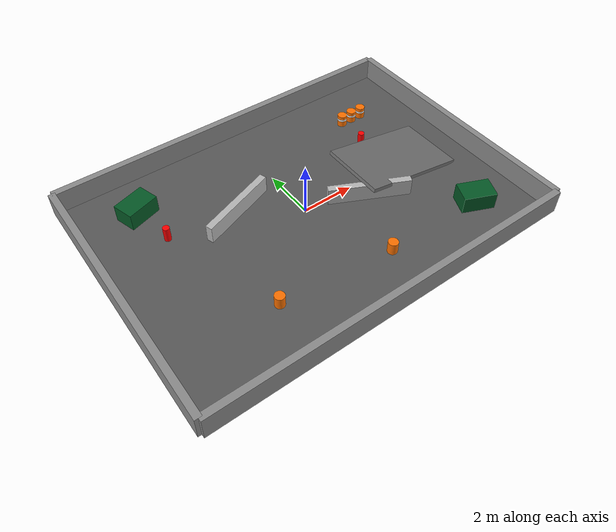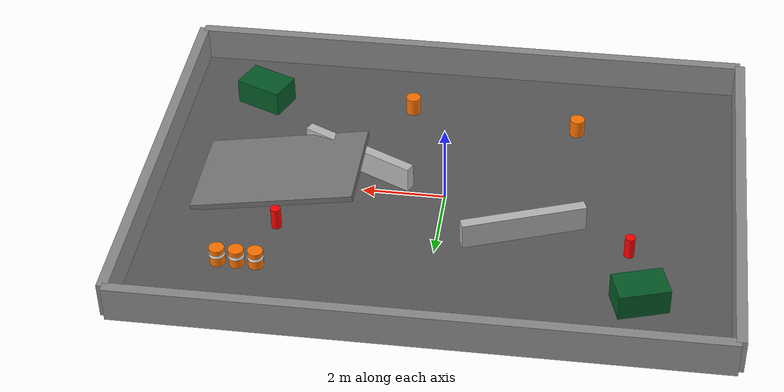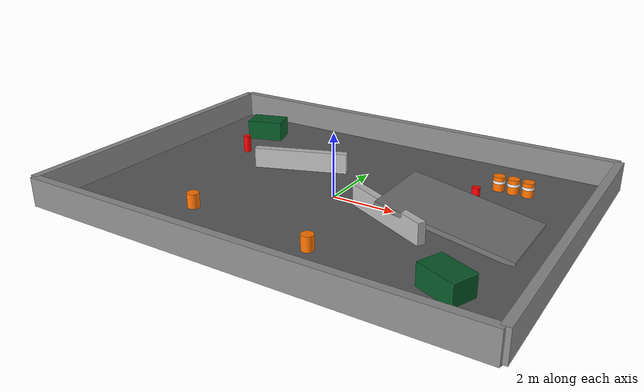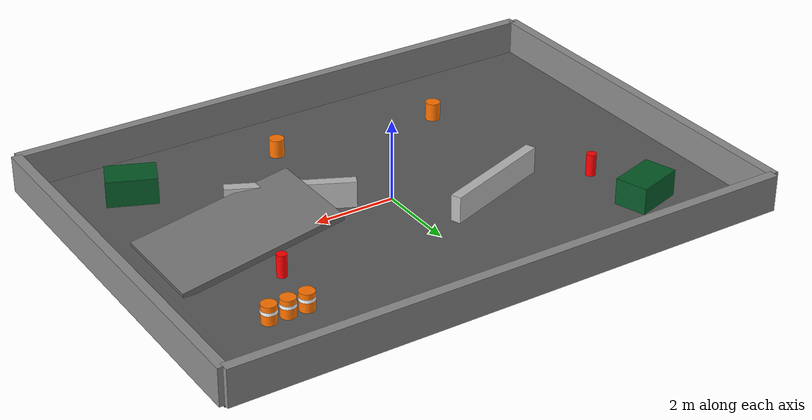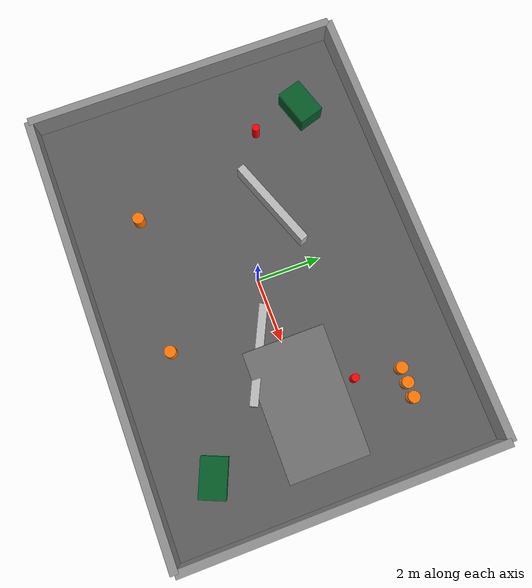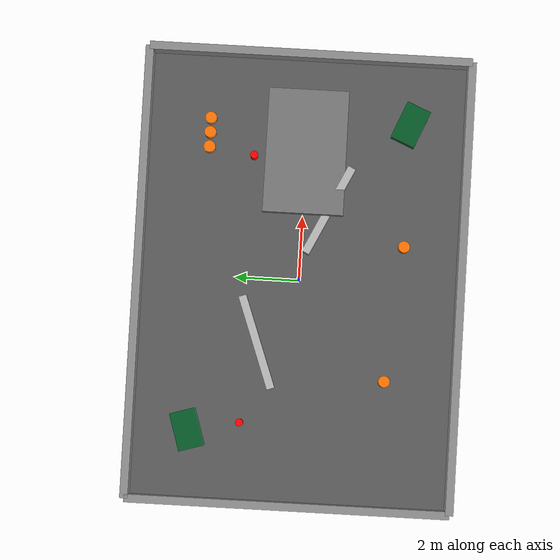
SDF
<?xml version="1.0" ?>
<sdf version="1.10">
  <world name="stability_test_world">

    <plugin filename="gz-sim-physics-system"
            name="gz::sim::systems::Physics"/>

    <plugin filename="gz-sim-scene-broadcaster-system"
            name="gz::sim::systems::SceneBroadcaster"/>

    <plugin filename="gz-sim-user-commands-system"
            name="gz::sim::systems::UserCommands"/>

    <plugin filename="gz-sim-sensors-system"
            name="gz::sim::systems::Sensors">
      <render_engine>ogre2</render_engine>
    </plugin>

    <plugin filename="gz-sim-imu-system"
            name="gz::sim::systems::Imu"/>

    <light type="directional" name="sun">
      <pose>0 0 10 0 0 0</pose>
      <diffuse>0.9 0.9 0.9 1</diffuse>
      <direction>-0.4 0.2 -1</direction>
    </light>

    <!-- chão tipo cimento -->
    <model name="concrete_ground">
      <static>true</static>
      <link name="link">
        <collision name="collision">
          <geometry><box><size>14 10 0.1</size></box></geometry>
        </collision>
        <visual name="visual">
          <geometry><box><size>14 10 0.1</size></box></geometry>
          <material>
            <ambient>0.28 0.28 0.28 1</ambient>
            <diffuse>0.35 0.35 0.35 1</diffuse>
          </material>
        </visual>
      </link>
    </model>

    <!-- paredes exteriores -->
    <model name="wall_front">
      <static>true</static>
      <pose>7 0 0.45 0 0 0</pose>
      <link name="link">
        <collision name="collision"><geometry><box><size>0.25 10 0.9</size></box></geometry></collision>
        <visual name="visual"><geometry><box><size>0.25 10 0.9</size></box></geometry>
          <material><ambient>0.45 0.45 0.45 1</ambient><diffuse>0.55 0.55 0.55 1</diffuse></material>
        </visual>
      </link>
    </model>

    <model name="wall_back">
      <static>true</static>
      <pose>-7 0 0.45 0 0 0</pose>
      <link name="link">
        <collision name="collision"><geometry><box><size>0.25 10 0.9</size></box></geometry></collision>
        <visual name="visual"><geometry><box><size>0.25 10 0.9</size></box></geometry>
          <material><ambient>0.45 0.45 0.45 1</ambient><diffuse>0.55 0.55 0.55 1</diffuse></material>
        </visual>
      </link>
    </model>

    <model name="wall_left">
      <static>true</static>
      <pose>0 5 0.45 0 0 0</pose>
      <link name="link">
        <collision name="collision"><geometry><box><size>14 0.25 0.9</size></box></geometry></collision>
        <visual name="visual"><geometry><box><size>14 0.25 0.9</size></box></geometry>
          <material><ambient>0.45 0.45 0.45 1</ambient><diffuse>0.55 0.55 0.55 1</diffuse></material>
        </visual>
      </link>
    </model>

    <model name="wall_right">
      <static>true</static>
      <pose>0 -5 0.45 0 0 0</pose>
      <link name="link">
        <collision name="collision"><geometry><box><size>14 0.25 0.9</size></box></geometry></collision>
        <visual name="visual"><geometry><box><size>14 0.25 0.9</size></box></geometry>
          <material><ambient>0.45 0.45 0.45 1</ambient><diffuse>0.55 0.55 0.55 1</diffuse></material>
        </visual>
      </link>
    </model>

    <!-- barreiras internas -->
    <model name="barrier_1">
      <static>true</static>
      <pose>-2.0 1.2 0.35 0 0 0.35</pose>
      <link name="link">
        <collision name="collision"><geometry><box><size>3.0 0.25 0.7</size></box></geometry></collision>
        <visual name="visual"><geometry><box><size>3.0 0.25 0.7</size></box></geometry></visual>
      </link>
    </model>

    <model name="barrier_2">
      <static>true</static>
      <pose>2.2 -0.8 0.35 0 0 -0.45</pose>
      <link name="link">
        <collision name="collision"><geometry><box><size>3.0 0.25 0.7</size></box></geometry></collision>
        <visual name="visual"><geometry><box><size>3.0 0.25 0.7</size></box></geometry></visual>
      </link>
    </model>

    <!-- contentores verdes -->
    <model name="dumpster_1">
      <static>true</static>
      <pose>-4.8 3.2 0.35 0 0 0.3</pose>
      <link name="link">
        <collision name="collision"><geometry><box><size>1.2 0.8 0.7</size></box></geometry></collision>
        <visual name="visual">
          <geometry><box><size>1.2 0.8 0.7</size></box></geometry>
          <material><ambient>0.02 0.25 0.12 1</ambient><diffuse>0.02 0.35 0.15 1</diffuse></material>
        </visual>
      </link>
    </model>

    <model name="dumpster_2">
      <static>true</static>
      <pose>5.0 -3.2 0.35 0 0 -0.4</pose>
      <link name="link">
        <collision name="collision"><geometry><box><size>1.2 0.8 0.7</size></box></geometry></collision>
        <visual name="visual">
          <geometry><box><size>1.2 0.8 0.7</size></box></geometry>
          <material><ambient>0.02 0.25 0.12 1</ambient><diffuse>0.02 0.35 0.15 1</diffuse></material>
        </visual>
      </link>
    </model>

    <!-- cones: cilindros laranja com faixa branca -->
    <model name="cone_group_1">
      <static>true</static>
      <pose>4 3 0 0 0 0</pose>

      <link name="cone1">
        <pose>0 0 0.25 0 0 0</pose>
        <collision name="collision"><geometry><cylinder><radius>0.18</radius><length>0.5</length></cylinder></geometry></collision>
        <visual name="orange"><geometry><cylinder><radius>0.18</radius><length>0.5</length></cylinder></geometry>
          <material><ambient>1 0.35 0 1</ambient><diffuse>1 0.45 0 1</diffuse></material>
        </visual>
        <visual name="white_band"><pose>0 0 0.08 0 0 0</pose><geometry><cylinder><radius>0.185</radius><length>0.08</length></cylinder></geometry>
          <material><ambient>1 1 1 1</ambient><diffuse>1 1 1 1</diffuse></material>
        </visual>
      </link>

      <link name="cone2">
        <pose>0.45 0 0.25 0 0 0</pose>
        <collision name="collision"><geometry><cylinder><radius>0.18</radius><length>0.5</length></cylinder></geometry></collision>
        <visual name="orange"><geometry><cylinder><radius>0.18</radius><length>0.5</length></cylinder></geometry>
          <material><ambient>1 0.35 0 1</ambient><diffuse>1 0.45 0 1</diffuse></material>
        </visual>
        <visual name="white_band"><pose>0 0 0.08 0 0 0</pose><geometry><cylinder><radius>0.185</radius><length>0.08</length></cylinder></geometry>
          <material><ambient>1 1 1 1</ambient><diffuse>1 1 1 1</diffuse></material>
        </visual>
      </link>

      <link name="cone3">
        <pose>0.9 0 0.25 0 0 0</pose>
        <collision name="collision"><geometry><cylinder><radius>0.18</radius><length>0.5</length></cylinder></geometry></collision>
        <visual name="orange"><geometry><cylinder><radius>0.18</radius><length>0.5</length></cylinder></geometry>
          <material><ambient>1 0.35 0 1</ambient><diffuse>1 0.45 0 1</diffuse></material>
        </visual>
        <visual name="white_band"><pose>0 0 0.08 0 0 0</pose><geometry><cylinder><radius>0.185</radius><length>0.08</length></cylinder></geometry>
          <material><ambient>1 1 1 1</ambient><diffuse>1 1 1 1</diffuse></material>
        </visual>
      </link>
    </model>

    <!-- cones soltos -->
    <model name="single_cone_1">
      <static>true</static>
      <pose>-3 -2.8 0.25 0 0 0</pose>
      <link name="link">
        <collision name="collision"><geometry><cylinder><radius>0.18</radius><length>0.5</length></cylinder></geometry></collision>
        <visual name="visual"><geometry><cylinder><radius>0.18</radius><length>0.5</length></cylinder></geometry>
          <material><ambient>1 0.35 0 1</ambient><diffuse>1 0.45 0 1</diffuse></material>
        </visual>
      </link>
    </model>

    <model name="single_cone_2">
      <static>true</static>
      <pose>1.2 -3.2 0.25 0 0 0</pose>
      <link name="link">
        <collision name="collision"><geometry><cylinder><radius>0.18</radius><length>0.5</length></cylinder></geometry></collision>
        <visual name="visual"><geometry><cylinder><radius>0.18</radius><length>0.5</length></cylinder></geometry>
          <material><ambient>1 0.35 0 1</ambient><diffuse>1 0.45 0 1</diffuse></material>
        </visual>
      </link>
    </model>

    <!-- hidrantes vermelhos simples -->
    <model name="hydrant_1">
      <static>true</static>
      <pose>-4.5 1.6 0.3 0 0 0</pose>
      <link name="link">
        <collision name="collision"><geometry><cylinder><radius>0.12</radius><length>0.6</length></cylinder></geometry></collision>
        <visual name="body"><geometry><cylinder><radius>0.12</radius><length>0.6</length></cylinder></geometry>
          <material><ambient>0.8 0 0 1</ambient><diffuse>1 0 0 1</diffuse></material>
        </visual>
      </link>
    </model>

    <model name="hydrant_2">
      <static>true</static>
      <pose>3.8 1.6 0.3 0 0 0</pose>
      <link name="link">
        <collision name="collision"><geometry><cylinder><radius>0.12</radius><length>0.6</length></cylinder></geometry></collision>
        <visual name="body"><geometry><cylinder><radius>0.12</radius><length>0.6</length></cylinder></geometry>
          <material><ambient>0.8 0 0 1</ambient><diffuse>1 0 0 1</diffuse></material>
        </visual>
      </link>
    </model>

    <!-- destino -->
    <model name="goal_marker">
      <static>true</static>
      <pose>5.2 3.8 0.03 0 0 0</pose>
      <link name="link">
        <visual name="visual">
          <geometry><cylinder><radius>0.3</radius><length>0.03</length></cylinder></geometry>
          <material><ambient>0 1 0 1</ambient><diffuse>0 1 0 1</diffuse></material>
        </visual>
      </link>
    </model>

    <!-- Rampa longitudinal de 10 graus -->
    <model name="ramp_pitch_10deg">
      <static>true</static>

      <!--
        x = 4.0 m
        y = 0.0 m
        z = 0.421 m
        pitch = 10 graus = 0.174533 rad
      -->
      <pose>4.0 0.0 0.421 0 0.174533 0</pose>

      <link name="ramp_link">

        <collision name="collision">
          <geometry>
            <box>
              <size>4.0 2.5 0.15</size>
            </box>
          </geometry>

          <surface>
            <friction>
              <ode>
                <mu>1.2</mu>
                <mu2>1.2</mu2>
              </ode>
            </friction>
          </surface>
        </collision>

        <visual name="visual">
          <geometry>
            <box>
              <size>4.0 2.5 0.15</size>
            </box>
          </geometry>

          <material>
            <ambient>0.35 0.35 0.35 1</ambient>
            <diffuse>0.45 0.45 0.45 1</diffuse>
          </material>
        </visual>

      </link>
    </model>

  </world>
</sdf>
